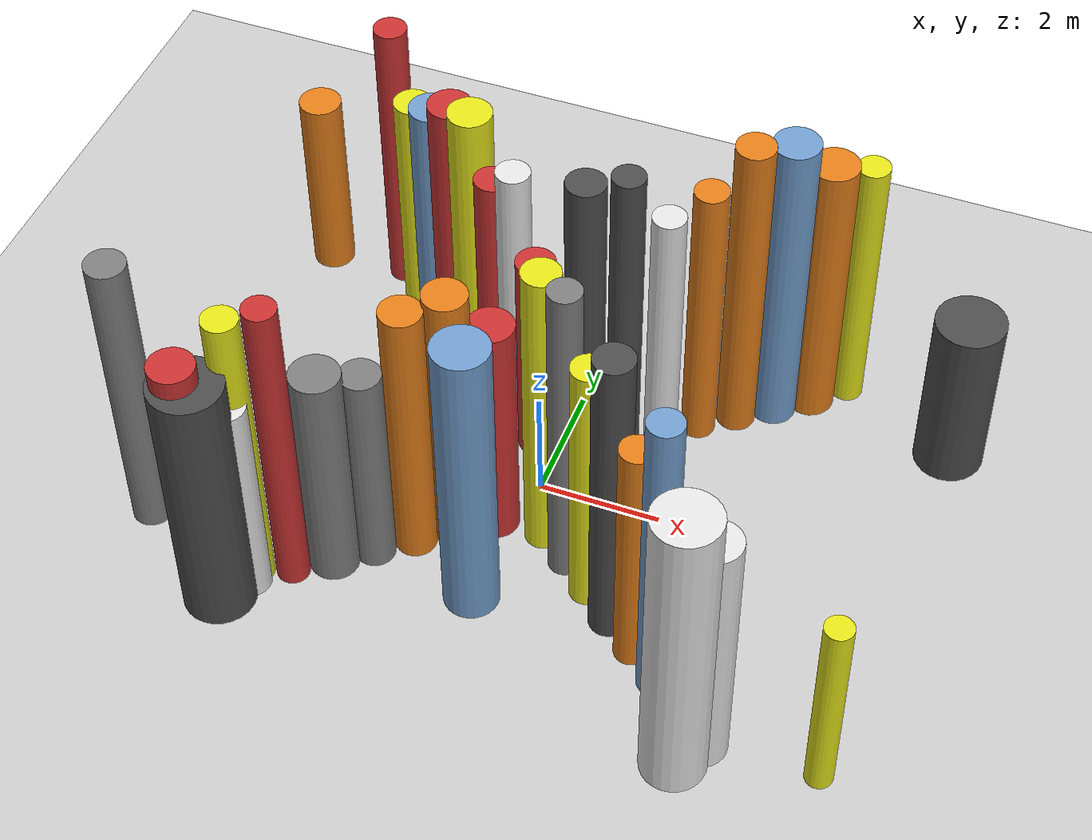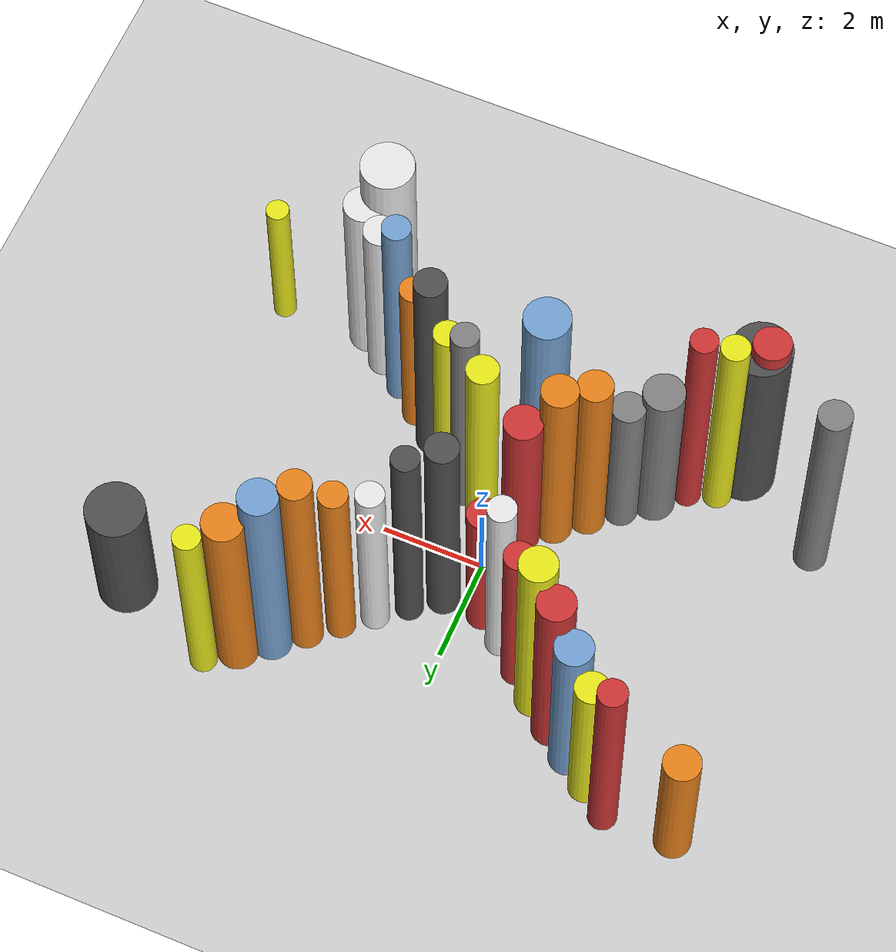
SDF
<?xml version='1.0'?>
<sdf version='1.6'>
  <world name='routeA_rl_v1__dense_recovery__rl_train__bottleneck_corridor__000073'>
    <!-- Sun light -->
    <light name='sun' type='directional'>
      <cast_shadows>1</cast_shadows>
      <pose>0 0 10 0 0 0</pose>
      <diffuse>0.8 0.8 0.8 1</diffuse>
      <specular>0.2 0.2 0.2 1</specular>
      <attenuation>
        <range>1000</range>
        <constant>0.9</constant>
        <linear>0.01</linear>
        <quadratic>0.001</quadratic>
      </attenuation>
      <direction>-0.5 0.1 -0.9</direction>
    </light>

    <!-- Ground plane -->
    <model name='ground_plane'>
      <static>1</static>
      <link name='link'>
        <collision name='collision'>
          <geometry>
            <plane>
              <normal>0 0 1</normal>
              <size>100 100</size>
            </plane>
          </geometry>
          <surface>
            <contact>
              <collide_bitmask>65535</collide_bitmask>
              <ode/>
            </contact>
            <friction>
              <ode>
                <mu>100</mu>
                <mu2>50</mu2>
              </ode>
              <torsional><ode/></torsional>
            </friction>
            <bounce/>
          </surface>
          <max_contacts>10</max_contacts>
        </collision>
        <visual name='visual'>
          <cast_shadows>0</cast_shadows>
          <geometry>
            <plane>
              <normal>0 0 1</normal>
              <size>100 100</size>
            </plane>
          </geometry>
          <material>
            <script>
              <uri>file://media/materials/scripts/gazebo.material</uri>
              <n>Gazebo/Grey</n>
            </script>
          </material>
        </visual>
      </link>
    </model>

    <!-- Environment -->
    <magnetic_field>6e-06 2.3e-05 -4.2e-05</magnetic_field>
    <atmosphere type='adiabatic'/>
    <physics name='default_physics' default='0' type='ode'>
      <gravity>0 0 -9.8</gravity>
      <max_step_size>0.004</max_step_size>
      <real_time_factor>1</real_time_factor>
      <real_time_update_rate>250</real_time_update_rate>
    </physics>
    <scene>
      <ambient>0.4 0.4 0.4 1</ambient>
      <background>0.7 0.7 0.7 1</background>
      <shadows>1</shadows>
    </scene>
    <wind/>
    <spherical_coordinates>
      <surface_model>EARTH_WGS84</surface_model>
      <latitude_deg>0</latitude_deg>
      <longitude_deg>0</longitude_deg>
      <elevation>0</elevation>
      <heading_deg>0</heading_deg>
    </spherical_coordinates>

    <!-- ============ OBSTACLES (40) ============ -->
    <model name='funnel_l_0'>
      <static>1</static>
      <link name='link'>
        <visual name='visual'>
          <geometry>
            <cylinder>
              <radius>0.3586</radius>
              <length>5.0715</length>
            </cylinder>
          </geometry>
          <material>
            <script>
              <n>Gazebo/Red</n>
              <uri>file://media/materials/scripts/gazebo.material</uri>
            </script>
            <ambient>0.8 0.2 0.2 1</ambient>
          </material>
        </visual>
        <collision name='collision'>
          <geometry>
            <cylinder>
              <radius>0.3586</radius>
              <length>5.0715</length>
            </cylinder>
          </geometry>
          <max_contacts>10</max_contacts>
          <surface>
            <contact><ode/></contact>
            <bounce/>
            <friction>
              <ode><mu>1</mu><mu2>1</mu2></ode>
              <torsional><ode/></torsional>
            </friction>
          </surface>
        </collision>
      </link>
      <pose>-4.0000 -3.8000 2.5357 0 0 0.0000</pose>
    </model>

    <model name='funnel_r_0'>
      <static>1</static>
      <link name='link'>
        <visual name='visual'>
          <geometry>
            <cylinder>
              <radius>0.2735</radius>
              <length>5.3521</length>
            </cylinder>
          </geometry>
          <material>
            <script>
              <n>Gazebo/Red</n>
              <uri>file://media/materials/scripts/gazebo.material</uri>
            </script>
            <ambient>0.8 0.2 0.2 1</ambient>
          </material>
        </visual>
        <collision name='collision'>
          <geometry>
            <cylinder>
              <radius>0.2735</radius>
              <length>5.3521</length>
            </cylinder>
          </geometry>
          <max_contacts>10</max_contacts>
          <surface>
            <contact><ode/></contact>
            <bounce/>
            <friction>
              <ode><mu>1</mu><mu2>1</mu2></ode>
              <torsional><ode/></torsional>
            </friction>
          </surface>
        </collision>
      </link>
      <pose>-4.0000 3.8000 2.6760 0 0 0.0000</pose>
    </model>

    <model name='funnel_l_1'>
      <static>1</static>
      <link name='link'>
        <visual name='visual'>
          <geometry>
            <cylinder>
              <radius>0.3065</radius>
              <length>4.0064</length>
            </cylinder>
          </geometry>
          <material>
            <script>
              <n>Gazebo/White</n>
              <uri>file://media/materials/scripts/gazebo.material</uri>
            </script>
            <ambient>0.9 0.9 0.9 1</ambient>
          </material>
        </visual>
        <collision name='collision'>
          <geometry>
            <cylinder>
              <radius>0.3065</radius>
              <length>4.0064</length>
            </cylinder>
          </geometry>
          <max_contacts>10</max_contacts>
          <surface>
            <contact><ode/></contact>
            <bounce/>
            <friction>
              <ode><mu>1</mu><mu2>1</mu2></ode>
              <torsional><ode/></torsional>
            </friction>
          </surface>
        </collision>
      </link>
      <pose>-3.4857 -3.3857 2.0032 0 0 0.0000</pose>
    </model>

    <model name='funnel_r_1'>
      <static>1</static>
      <link name='link'>
        <visual name='visual'>
          <geometry>
            <cylinder>
              <radius>0.3159</radius>
              <length>4.3102</length>
            </cylinder>
          </geometry>
          <material>
            <script>
              <n>Gazebo/Yellow</n>
              <uri>file://media/materials/scripts/gazebo.material</uri>
            </script>
            <ambient>0.9 0.9 0.1 1</ambient>
          </material>
        </visual>
        <collision name='collision'>
          <geometry>
            <cylinder>
              <radius>0.3159</radius>
              <length>4.3102</length>
            </cylinder>
          </geometry>
          <max_contacts>10</max_contacts>
          <surface>
            <contact><ode/></contact>
            <bounce/>
            <friction>
              <ode><mu>1</mu><mu2>1</mu2></ode>
              <torsional><ode/></torsional>
            </friction>
          </surface>
        </collision>
      </link>
      <pose>-3.4857 3.3857 2.1551 0 0 0.0000</pose>
    </model>

    <model name='funnel_l_2'>
      <static>1</static>
      <link name='link'>
        <visual name='visual'>
          <geometry>
            <cylinder>
              <radius>0.2623</radius>
              <length>5.7871</length>
            </cylinder>
          </geometry>
          <material>
            <script>
              <n>Gazebo/Red</n>
              <uri>file://media/materials/scripts/gazebo.material</uri>
            </script>
            <ambient>0.8 0.2 0.2 1</ambient>
          </material>
        </visual>
        <collision name='collision'>
          <geometry>
            <cylinder>
              <radius>0.2623</radius>
              <length>5.7871</length>
            </cylinder>
          </geometry>
          <max_contacts>10</max_contacts>
          <surface>
            <contact><ode/></contact>
            <bounce/>
            <friction>
              <ode><mu>1</mu><mu2>1</mu2></ode>
              <torsional><ode/></torsional>
            </friction>
          </surface>
        </collision>
      </link>
      <pose>-2.9714 -2.9714 2.8936 0 0 0.0000</pose>
    </model>

    <model name='funnel_r_2'>
      <static>1</static>
      <link name='link'>
        <visual name='visual'>
          <geometry>
            <cylinder>
              <radius>0.3608</radius>
              <length>4.6753</length>
            </cylinder>
          </geometry>
          <material>
            <script>
              <n>Gazebo/Blue</n>
              <uri>file://media/materials/scripts/gazebo.material</uri>
            </script>
            <ambient>0.447 0.624 0.812 1</ambient>
          </material>
        </visual>
        <collision name='collision'>
          <geometry>
            <cylinder>
              <radius>0.3608</radius>
              <length>4.6753</length>
            </cylinder>
          </geometry>
          <max_contacts>10</max_contacts>
          <surface>
            <contact><ode/></contact>
            <bounce/>
            <friction>
              <ode><mu>1</mu><mu2>1</mu2></ode>
              <torsional><ode/></torsional>
            </friction>
          </surface>
        </collision>
      </link>
      <pose>-2.9714 2.9714 2.3376 0 0 0.0000</pose>
    </model>

    <model name='funnel_l_3'>
      <static>1</static>
      <link name='link'>
        <visual name='visual'>
          <geometry>
            <cylinder>
              <radius>0.3946</radius>
              <length>4.2470</length>
            </cylinder>
          </geometry>
          <material>
            <script>
              <n>Gazebo/Grey</n>
              <uri>file://media/materials/scripts/gazebo.material</uri>
            </script>
            <ambient>0.5 0.5 0.5 1</ambient>
          </material>
        </visual>
        <collision name='collision'>
          <geometry>
            <cylinder>
              <radius>0.3946</radius>
              <length>4.2470</length>
            </cylinder>
          </geometry>
          <max_contacts>10</max_contacts>
          <surface>
            <contact><ode/></contact>
            <bounce/>
            <friction>
              <ode><mu>1</mu><mu2>1</mu2></ode>
              <torsional><ode/></torsional>
            </friction>
          </surface>
        </collision>
      </link>
      <pose>-2.4571 -2.5571 2.1235 0 0 0.0000</pose>
    </model>

    <model name='funnel_r_3'>
      <static>1</static>
      <link name='link'>
        <visual name='visual'>
          <geometry>
            <cylinder>
              <radius>0.3611</radius>
              <length>5.2264</length>
            </cylinder>
          </geometry>
          <material>
            <script>
              <n>Gazebo/Red</n>
              <uri>file://media/materials/scripts/gazebo.material</uri>
            </script>
            <ambient>0.8 0.2 0.2 1</ambient>
          </material>
        </visual>
        <collision name='collision'>
          <geometry>
            <cylinder>
              <radius>0.3611</radius>
              <length>5.2264</length>
            </cylinder>
          </geometry>
          <max_contacts>10</max_contacts>
          <surface>
            <contact><ode/></contact>
            <bounce/>
            <friction>
              <ode><mu>1</mu><mu2>1</mu2></ode>
              <torsional><ode/></torsional>
            </friction>
          </surface>
        </collision>
      </link>
      <pose>-2.4571 2.5571 2.6132 0 0 0.0000</pose>
    </model>

    <model name='funnel_l_4'>
      <static>1</static>
      <link name='link'>
        <visual name='visual'>
          <geometry>
            <cylinder>
              <radius>0.3242</radius>
              <length>4.0220</length>
            </cylinder>
          </geometry>
          <material>
            <script>
              <n>Gazebo/Grey</n>
              <uri>file://media/materials/scripts/gazebo.material</uri>
            </script>
            <ambient>0.5 0.5 0.5 1</ambient>
          </material>
        </visual>
        <collision name='collision'>
          <geometry>
            <cylinder>
              <radius>0.3242</radius>
              <length>4.0220</length>
            </cylinder>
          </geometry>
          <max_contacts>10</max_contacts>
          <surface>
            <contact><ode/></contact>
            <bounce/>
            <friction>
              <ode><mu>1</mu><mu2>1</mu2></ode>
              <torsional><ode/></torsional>
            </friction>
          </surface>
        </collision>
      </link>
      <pose>-1.9429 -2.1429 2.0110 0 0 0.0000</pose>
    </model>

    <model name='funnel_r_4'>
      <static>1</static>
      <link name='link'>
        <visual name='visual'>
          <geometry>
            <cylinder>
              <radius>0.3581</radius>
              <length>5.5497</length>
            </cylinder>
          </geometry>
          <material>
            <script>
              <n>Gazebo/Yellow</n>
              <uri>file://media/materials/scripts/gazebo.material</uri>
            </script>
            <ambient>0.9 0.9 0.1 1</ambient>
          </material>
        </visual>
        <collision name='collision'>
          <geometry>
            <cylinder>
              <radius>0.3581</radius>
              <length>5.5497</length>
            </cylinder>
          </geometry>
          <max_contacts>10</max_contacts>
          <surface>
            <contact><ode/></contact>
            <bounce/>
            <friction>
              <ode><mu>1</mu><mu2>1</mu2></ode>
              <torsional><ode/></torsional>
            </friction>
          </surface>
        </collision>
      </link>
      <pose>-1.9429 2.1429 2.7748 0 0 0.0000</pose>
    </model>

    <model name='funnel_l_5'>
      <static>1</static>
      <link name='link'>
        <visual name='visual'>
          <geometry>
            <cylinder>
              <radius>0.3347</radius>
              <length>5.1124</length>
            </cylinder>
          </geometry>
          <material>
            <script>
              <n>Gazebo/Orange</n>
              <uri>file://media/materials/scripts/gazebo.material</uri>
            </script>
            <ambient>0.9 0.5 0.1 1</ambient>
          </material>
        </visual>
        <collision name='collision'>
          <geometry>
            <cylinder>
              <radius>0.3347</radius>
              <length>5.1124</length>
            </cylinder>
          </geometry>
          <max_contacts>10</max_contacts>
          <surface>
            <contact><ode/></contact>
            <bounce/>
            <friction>
              <ode><mu>1</mu><mu2>1</mu2></ode>
              <torsional><ode/></torsional>
            </friction>
          </surface>
        </collision>
      </link>
      <pose>-1.4286 -1.7286 2.5562 0 0 0.0000</pose>
    </model>

    <model name='funnel_r_5'>
      <static>1</static>
      <link name='link'>
        <visual name='visual'>
          <geometry>
            <cylinder>
              <radius>0.2926</radius>
              <length>4.7142</length>
            </cylinder>
          </geometry>
          <material>
            <script>
              <n>Gazebo/Red</n>
              <uri>file://media/materials/scripts/gazebo.material</uri>
            </script>
            <ambient>0.8 0.2 0.2 1</ambient>
          </material>
        </visual>
        <collision name='collision'>
          <geometry>
            <cylinder>
              <radius>0.2926</radius>
              <length>4.7142</length>
            </cylinder>
          </geometry>
          <max_contacts>10</max_contacts>
          <surface>
            <contact><ode/></contact>
            <bounce/>
            <friction>
              <ode><mu>1</mu><mu2>1</mu2></ode>
              <torsional><ode/></torsional>
            </friction>
          </surface>
        </collision>
      </link>
      <pose>-1.4286 1.7286 2.3571 0 0 0.0000</pose>
    </model>

    <model name='funnel_l_6'>
      <static>1</static>
      <link name='link'>
        <visual name='visual'>
          <geometry>
            <cylinder>
              <radius>0.3491</radius>
              <length>5.2426</length>
            </cylinder>
          </geometry>
          <material>
            <script>
              <n>Gazebo/Orange</n>
              <uri>file://media/materials/scripts/gazebo.material</uri>
            </script>
            <ambient>0.9 0.5 0.1 1</ambient>
          </material>
        </visual>
        <collision name='collision'>
          <geometry>
            <cylinder>
              <radius>0.3491</radius>
              <length>5.2426</length>
            </cylinder>
          </geometry>
          <max_contacts>10</max_contacts>
          <surface>
            <contact><ode/></contact>
            <bounce/>
            <friction>
              <ode><mu>1</mu><mu2>1</mu2></ode>
              <torsional><ode/></torsional>
            </friction>
          </surface>
        </collision>
      </link>
      <pose>-0.9143 -1.3143 2.6213 0 0 0.0000</pose>
    </model>

    <model name='funnel_r_6'>
      <static>1</static>
      <link name='link'>
        <visual name='visual'>
          <geometry>
            <cylinder>
              <radius>0.2744</radius>
              <length>5.3681</length>
            </cylinder>
          </geometry>
          <material>
            <script>
              <n>Gazebo/White</n>
              <uri>file://media/materials/scripts/gazebo.material</uri>
            </script>
            <ambient>0.9 0.9 0.9 1</ambient>
          </material>
        </visual>
        <collision name='collision'>
          <geometry>
            <cylinder>
              <radius>0.2744</radius>
              <length>5.3681</length>
            </cylinder>
          </geometry>
          <max_contacts>10</max_contacts>
          <surface>
            <contact><ode/></contact>
            <bounce/>
            <friction>
              <ode><mu>1</mu><mu2>1</mu2></ode>
              <torsional><ode/></torsional>
            </friction>
          </surface>
        </collision>
      </link>
      <pose>-0.9143 1.3143 2.6840 0 0 0.0000</pose>
    </model>

    <model name='funnel_l_7'>
      <static>1</static>
      <link name='link'>
        <visual name='visual'>
          <geometry>
            <cylinder>
              <radius>0.3707</radius>
              <length>4.4175</length>
            </cylinder>
          </geometry>
          <material>
            <script>
              <n>Gazebo/Red</n>
              <uri>file://media/materials/scripts/gazebo.material</uri>
            </script>
            <ambient>0.8 0.2 0.2 1</ambient>
          </material>
        </visual>
        <collision name='collision'>
          <geometry>
            <cylinder>
              <radius>0.3707</radius>
              <length>4.4175</length>
            </cylinder>
          </geometry>
          <max_contacts>10</max_contacts>
          <surface>
            <contact><ode/></contact>
            <bounce/>
            <friction>
              <ode><mu>1</mu><mu2>1</mu2></ode>
              <torsional><ode/></torsional>
            </friction>
          </surface>
        </collision>
      </link>
      <pose>-0.4000 -0.9000 2.2087 0 0 0.0000</pose>
    </model>

    <model name='funnel_r_7'>
      <static>1</static>
      <link name='link'>
        <visual name='visual'>
          <geometry>
            <cylinder>
              <radius>0.3200</radius>
              <length>4.0639</length>
            </cylinder>
          </geometry>
          <material>
            <script>
              <n>Gazebo/Red</n>
              <uri>file://media/materials/scripts/gazebo.material</uri>
            </script>
            <ambient>0.8 0.2 0.2 1</ambient>
          </material>
        </visual>
        <collision name='collision'>
          <geometry>
            <cylinder>
              <radius>0.3200</radius>
              <length>4.0639</length>
            </cylinder>
          </geometry>
          <max_contacts>10</max_contacts>
          <surface>
            <contact><ode/></contact>
            <bounce/>
            <friction>
              <ode><mu>1</mu><mu2>1</mu2></ode>
              <torsional><ode/></torsional>
            </friction>
          </surface>
        </collision>
      </link>
      <pose>-0.4000 0.9000 2.0320 0 0 0.0000</pose>
    </model>

    <model name='funnel_out_l_0'>
      <static>1</static>
      <link name='link'>
        <visual name='visual'>
          <geometry>
            <cylinder>
              <radius>0.3049</radius>
              <length>5.7622</length>
            </cylinder>
          </geometry>
          <material>
            <script>
              <n>Gazebo/Yellow</n>
              <uri>file://media/materials/scripts/gazebo.material</uri>
            </script>
            <ambient>0.9 0.9 0.1 1</ambient>
          </material>
        </visual>
        <collision name='collision'>
          <geometry>
            <cylinder>
              <radius>0.3049</radius>
              <length>5.7622</length>
            </cylinder>
          </geometry>
          <max_contacts>10</max_contacts>
          <surface>
            <contact><ode/></contact>
            <bounce/>
            <friction>
              <ode><mu>1</mu><mu2>1</mu2></ode>
              <torsional><ode/></torsional>
            </friction>
          </surface>
        </collision>
      </link>
      <pose>0.4000 -0.9000 2.8811 0 0 0.0000</pose>
    </model>

    <model name='funnel_out_r_0'>
      <static>1</static>
      <link name='link'>
        <visual name='visual'>
          <geometry>
            <cylinder>
              <radius>0.3170</radius>
              <length>5.9236</length>
            </cylinder>
          </geometry>
          <material>
            <script>
              <n>Gazebo/DarkGrey</n>
              <uri>file://media/materials/scripts/gazebo.material</uri>
            </script>
            <ambient>0.3 0.3 0.3 1</ambient>
          </material>
        </visual>
        <collision name='collision'>
          <geometry>
            <cylinder>
              <radius>0.3170</radius>
              <length>5.9236</length>
            </cylinder>
          </geometry>
          <max_contacts>10</max_contacts>
          <surface>
            <contact><ode/></contact>
            <bounce/>
            <friction>
              <ode><mu>1</mu><mu2>1</mu2></ode>
              <torsional><ode/></torsional>
            </friction>
          </surface>
        </collision>
      </link>
      <pose>0.4000 0.9000 2.9618 0 0 0.0000</pose>
    </model>

    <model name='funnel_out_l_1'>
      <static>1</static>
      <link name='link'>
        <visual name='visual'>
          <geometry>
            <cylinder>
              <radius>0.2663</radius>
              <length>5.9661</length>
            </cylinder>
          </geometry>
          <material>
            <script>
              <n>Gazebo/Grey</n>
              <uri>file://media/materials/scripts/gazebo.material</uri>
            </script>
            <ambient>0.5 0.5 0.5 1</ambient>
          </material>
        </visual>
        <collision name='collision'>
          <geometry>
            <cylinder>
              <radius>0.2663</radius>
              <length>5.9661</length>
            </cylinder>
          </geometry>
          <max_contacts>10</max_contacts>
          <surface>
            <contact><ode/></contact>
            <bounce/>
            <friction>
              <ode><mu>1</mu><mu2>1</mu2></ode>
              <torsional><ode/></torsional>
            </friction>
          </surface>
        </collision>
      </link>
      <pose>0.9143 -1.3143 2.9830 0 0 0.0000</pose>
    </model>

    <model name='funnel_out_r_1'>
      <static>1</static>
      <link name='link'>
        <visual name='visual'>
          <geometry>
            <cylinder>
              <radius>0.2669</radius>
              <length>5.8618</length>
            </cylinder>
          </geometry>
          <material>
            <script>
              <n>Gazebo/DarkGrey</n>
              <uri>file://media/materials/scripts/gazebo.material</uri>
            </script>
            <ambient>0.3 0.3 0.3 1</ambient>
          </material>
        </visual>
        <collision name='collision'>
          <geometry>
            <cylinder>
              <radius>0.2669</radius>
              <length>5.8618</length>
            </cylinder>
          </geometry>
          <max_contacts>10</max_contacts>
          <surface>
            <contact><ode/></contact>
            <bounce/>
            <friction>
              <ode><mu>1</mu><mu2>1</mu2></ode>
              <torsional><ode/></torsional>
            </friction>
          </surface>
        </collision>
      </link>
      <pose>0.9143 1.3143 2.9309 0 0 0.0000</pose>
    </model>

    <model name='funnel_out_l_2'>
      <static>1</static>
      <link name='link'>
        <visual name='visual'>
          <geometry>
            <cylinder>
              <radius>0.2747</radius>
              <length>5.0227</length>
            </cylinder>
          </geometry>
          <material>
            <script>
              <n>Gazebo/Yellow</n>
              <uri>file://media/materials/scripts/gazebo.material</uri>
            </script>
            <ambient>0.9 0.9 0.1 1</ambient>
          </material>
        </visual>
        <collision name='collision'>
          <geometry>
            <cylinder>
              <radius>0.2747</radius>
              <length>5.0227</length>
            </cylinder>
          </geometry>
          <max_contacts>10</max_contacts>
          <surface>
            <contact><ode/></contact>
            <bounce/>
            <friction>
              <ode><mu>1</mu><mu2>1</mu2></ode>
              <torsional><ode/></torsional>
            </friction>
          </surface>
        </collision>
      </link>
      <pose>1.4286 -1.7286 2.5114 0 0 0.0000</pose>
    </model>

    <model name='funnel_out_r_2'>
      <static>1</static>
      <link name='link'>
        <visual name='visual'>
          <geometry>
            <cylinder>
              <radius>0.2716</radius>
              <length>4.8697</length>
            </cylinder>
          </geometry>
          <material>
            <script>
              <n>Gazebo/White</n>
              <uri>file://media/materials/scripts/gazebo.material</uri>
            </script>
            <ambient>0.9 0.9 0.9 1</ambient>
          </material>
        </visual>
        <collision name='collision'>
          <geometry>
            <cylinder>
              <radius>0.2716</radius>
              <length>4.8697</length>
            </cylinder>
          </geometry>
          <max_contacts>10</max_contacts>
          <surface>
            <contact><ode/></contact>
            <bounce/>
            <friction>
              <ode><mu>1</mu><mu2>1</mu2></ode>
              <torsional><ode/></torsional>
            </friction>
          </surface>
        </collision>
      </link>
      <pose>1.4286 1.7286 2.4348 0 0 0.0000</pose>
    </model>

    <model name='funnel_out_l_3'>
      <static>1</static>
      <link name='link'>
        <visual name='visual'>
          <geometry>
            <cylinder>
              <radius>0.3142</radius>
              <length>5.8073</length>
            </cylinder>
          </geometry>
          <material>
            <script>
              <n>Gazebo/DarkGrey</n>
              <uri>file://media/materials/scripts/gazebo.material</uri>
            </script>
            <ambient>0.3 0.3 0.3 1</ambient>
          </material>
        </visual>
        <collision name='collision'>
          <geometry>
            <cylinder>
              <radius>0.3142</radius>
              <length>5.8073</length>
            </cylinder>
          </geometry>
          <max_contacts>10</max_contacts>
          <surface>
            <contact><ode/></contact>
            <bounce/>
            <friction>
              <ode><mu>1</mu><mu2>1</mu2></ode>
              <torsional><ode/></torsional>
            </friction>
          </surface>
        </collision>
      </link>
      <pose>1.9429 -2.1429 2.9036 0 0 0.0000</pose>
    </model>

    <model name='funnel_out_r_3'>
      <static>1</static>
      <link name='link'>
        <visual name='visual'>
          <geometry>
            <cylinder>
              <radius>0.2775</radius>
              <length>5.2025</length>
            </cylinder>
          </geometry>
          <material>
            <script>
              <n>Gazebo/Orange</n>
              <uri>file://media/materials/scripts/gazebo.material</uri>
            </script>
            <ambient>0.9 0.5 0.1 1</ambient>
          </material>
        </visual>
        <collision name='collision'>
          <geometry>
            <cylinder>
              <radius>0.2775</radius>
              <length>5.2025</length>
            </cylinder>
          </geometry>
          <max_contacts>10</max_contacts>
          <surface>
            <contact><ode/></contact>
            <bounce/>
            <friction>
              <ode><mu>1</mu><mu2>1</mu2></ode>
              <torsional><ode/></torsional>
            </friction>
          </surface>
        </collision>
      </link>
      <pose>1.9429 2.1429 2.6012 0 0 0.0000</pose>
    </model>

    <model name='funnel_out_l_4'>
      <static>1</static>
      <link name='link'>
        <visual name='visual'>
          <geometry>
            <cylinder>
              <radius>0.2747</radius>
              <length>4.6065</length>
            </cylinder>
          </geometry>
          <material>
            <script>
              <n>Gazebo/Orange</n>
              <uri>file://media/materials/scripts/gazebo.material</uri>
            </script>
            <ambient>0.9 0.5 0.1 1</ambient>
          </material>
        </visual>
        <collision name='collision'>
          <geometry>
            <cylinder>
              <radius>0.2747</radius>
              <length>4.6065</length>
            </cylinder>
          </geometry>
          <max_contacts>10</max_contacts>
          <surface>
            <contact><ode/></contact>
            <bounce/>
            <friction>
              <ode><mu>1</mu><mu2>1</mu2></ode>
              <torsional><ode/></torsional>
            </friction>
          </surface>
        </collision>
      </link>
      <pose>2.4571 -2.5571 2.3033 0 0 0.0000</pose>
    </model>

    <model name='funnel_out_r_4'>
      <static>1</static>
      <link name='link'>
        <visual name='visual'>
          <geometry>
            <cylinder>
              <radius>0.3149</radius>
              <length>5.9021</length>
            </cylinder>
          </geometry>
          <material>
            <script>
              <n>Gazebo/Orange</n>
              <uri>file://media/materials/scripts/gazebo.material</uri>
            </script>
            <ambient>0.9 0.5 0.1 1</ambient>
          </material>
        </visual>
        <collision name='collision'>
          <geometry>
            <cylinder>
              <radius>0.3149</radius>
              <length>5.9021</length>
            </cylinder>
          </geometry>
          <max_contacts>10</max_contacts>
          <surface>
            <contact><ode/></contact>
            <bounce/>
            <friction>
              <ode><mu>1</mu><mu2>1</mu2></ode>
              <torsional><ode/></torsional>
            </friction>
          </surface>
        </collision>
      </link>
      <pose>2.4571 2.5571 2.9510 0 0 0.0000</pose>
    </model>

    <model name='funnel_out_l_5'>
      <static>1</static>
      <link name='link'>
        <visual name='visual'>
          <geometry>
            <cylinder>
              <radius>0.2761</radius>
              <length>5.7819</length>
            </cylinder>
          </geometry>
          <material>
            <script>
              <n>Gazebo/Blue</n>
              <uri>file://media/materials/scripts/gazebo.material</uri>
            </script>
            <ambient>0.447 0.624 0.812 1</ambient>
          </material>
        </visual>
        <collision name='collision'>
          <geometry>
            <cylinder>
              <radius>0.2761</radius>
              <length>5.7819</length>
            </cylinder>
          </geometry>
          <max_contacts>10</max_contacts>
          <surface>
            <contact><ode/></contact>
            <bounce/>
            <friction>
              <ode><mu>1</mu><mu2>1</mu2></ode>
              <torsional><ode/></torsional>
            </friction>
          </surface>
        </collision>
      </link>
      <pose>2.9714 -2.9714 2.8909 0 0 0.0000</pose>
    </model>

    <model name='funnel_out_r_5'>
      <static>1</static>
      <link name='link'>
        <visual name='visual'>
          <geometry>
            <cylinder>
              <radius>0.3741</radius>
              <length>5.7834</length>
            </cylinder>
          </geometry>
          <material>
            <script>
              <n>Gazebo/Blue</n>
              <uri>file://media/materials/scripts/gazebo.material</uri>
            </script>
            <ambient>0.447 0.624 0.812 1</ambient>
          </material>
        </visual>
        <collision name='collision'>
          <geometry>
            <cylinder>
              <radius>0.3741</radius>
              <length>5.7834</length>
            </cylinder>
          </geometry>
          <max_contacts>10</max_contacts>
          <surface>
            <contact><ode/></contact>
            <bounce/>
            <friction>
              <ode><mu>1</mu><mu2>1</mu2></ode>
              <torsional><ode/></torsional>
            </friction>
          </surface>
        </collision>
      </link>
      <pose>2.9714 2.9714 2.8917 0 0 0.0000</pose>
    </model>

    <model name='funnel_out_l_6'>
      <static>1</static>
      <link name='link'>
        <visual name='visual'>
          <geometry>
            <cylinder>
              <radius>0.3301</radius>
              <length>4.7495</length>
            </cylinder>
          </geometry>
          <material>
            <script>
              <n>Gazebo/White</n>
              <uri>file://media/materials/scripts/gazebo.material</uri>
            </script>
            <ambient>0.9 0.9 0.9 1</ambient>
          </material>
        </visual>
        <collision name='collision'>
          <geometry>
            <cylinder>
              <radius>0.3301</radius>
              <length>4.7495</length>
            </cylinder>
          </geometry>
          <max_contacts>10</max_contacts>
          <surface>
            <contact><ode/></contact>
            <bounce/>
            <friction>
              <ode><mu>1</mu><mu2>1</mu2></ode>
              <torsional><ode/></torsional>
            </friction>
          </surface>
        </collision>
      </link>
      <pose>3.4857 -3.3857 2.3748 0 0 0.0000</pose>
    </model>

    <model name='funnel_out_r_6'>
      <static>1</static>
      <link name='link'>
        <visual name='visual'>
          <geometry>
            <cylinder>
              <radius>0.3900</radius>
              <length>5.1813</length>
            </cylinder>
          </geometry>
          <material>
            <script>
              <n>Gazebo/Orange</n>
              <uri>file://media/materials/scripts/gazebo.material</uri>
            </script>
            <ambient>0.9 0.5 0.1 1</ambient>
          </material>
        </visual>
        <collision name='collision'>
          <geometry>
            <cylinder>
              <radius>0.3900</radius>
              <length>5.1813</length>
            </cylinder>
          </geometry>
          <max_contacts>10</max_contacts>
          <surface>
            <contact><ode/></contact>
            <bounce/>
            <friction>
              <ode><mu>1</mu><mu2>1</mu2></ode>
              <torsional><ode/></torsional>
            </friction>
          </surface>
        </collision>
      </link>
      <pose>3.4857 3.3857 2.5906 0 0 0.0000</pose>
    </model>

    <model name='funnel_out_l_7'>
      <static>1</static>
      <link name='link'>
        <visual name='visual'>
          <geometry>
            <cylinder>
              <radius>0.3889</radius>
              <length>4.7196</length>
            </cylinder>
          </geometry>
          <material>
            <script>
              <n>Gazebo/White</n>
              <uri>file://media/materials/scripts/gazebo.material</uri>
            </script>
            <ambient>0.9 0.9 0.9 1</ambient>
          </material>
        </visual>
        <collision name='collision'>
          <geometry>
            <cylinder>
              <radius>0.3889</radius>
              <length>4.7196</length>
            </cylinder>
          </geometry>
          <max_contacts>10</max_contacts>
          <surface>
            <contact><ode/></contact>
            <bounce/>
            <friction>
              <ode><mu>1</mu><mu2>1</mu2></ode>
              <torsional><ode/></torsional>
            </friction>
          </surface>
        </collision>
      </link>
      <pose>4.0000 -3.8000 2.3598 0 0 0.0000</pose>
    </model>

    <model name='funnel_out_r_7'>
      <static>1</static>
      <link name='link'>
        <visual name='visual'>
          <geometry>
            <cylinder>
              <radius>0.2605</radius>
              <length>4.9551</length>
            </cylinder>
          </geometry>
          <material>
            <script>
              <n>Gazebo/Yellow</n>
              <uri>file://media/materials/scripts/gazebo.material</uri>
            </script>
            <ambient>0.9 0.9 0.1 1</ambient>
          </material>
        </visual>
        <collision name='collision'>
          <geometry>
            <cylinder>
              <radius>0.2605</radius>
              <length>4.9551</length>
            </cylinder>
          </geometry>
          <max_contacts>10</max_contacts>
          <surface>
            <contact><ode/></contact>
            <bounce/>
            <friction>
              <ode><mu>1</mu><mu2>1</mu2></ode>
              <torsional><ode/></torsional>
            </friction>
          </surface>
        </collision>
      </link>
      <pose>4.0000 3.8000 2.4775 0 0 0.0000</pose>
    </model>

    <model name='bn_scatter_0'>
      <static>1</static>
      <link name='link'>
        <visual name='visual'>
          <geometry>
            <cylinder>
              <radius>0.5752</radius>
              <length>4.7498</length>
            </cylinder>
          </geometry>
          <material>
            <script>
              <n>Gazebo/DarkGrey</n>
              <uri>file://media/materials/scripts/gazebo.material</uri>
            </script>
            <ambient>0.3 0.3 0.3 1</ambient>
          </material>
        </visual>
        <collision name='collision'>
          <geometry>
            <cylinder>
              <radius>0.5752</radius>
              <length>4.7498</length>
            </cylinder>
          </geometry>
          <max_contacts>10</max_contacts>
          <surface>
            <contact><ode/></contact>
            <bounce/>
            <friction>
              <ode><mu>1</mu><mu2>1</mu2></ode>
              <torsional><ode/></torsional>
            </friction>
          </surface>
        </collision>
      </link>
      <pose>-3.8248 -3.8031 2.3749 0 0 0.0000</pose>
    </model>

    <model name='bn_scatter_1'>
      <static>1</static>
      <link name='link'>
        <visual name='visual'>
          <geometry>
            <cylinder>
              <radius>0.5122</radius>
              <length>5.5714</length>
            </cylinder>
          </geometry>
          <material>
            <script>
              <n>Gazebo/White</n>
              <uri>file://media/materials/scripts/gazebo.material</uri>
            </script>
            <ambient>0.9 0.9 0.9 1</ambient>
          </material>
        </visual>
        <collision name='collision'>
          <geometry>
            <cylinder>
              <radius>0.5122</radius>
              <length>5.5714</length>
            </cylinder>
          </geometry>
          <max_contacts>10</max_contacts>
          <surface>
            <contact><ode/></contact>
            <bounce/>
            <friction>
              <ode><mu>1</mu><mu2>1</mu2></ode>
              <torsional><ode/></torsional>
            </friction>
          </surface>
        </collision>
      </link>
      <pose>3.7048 -4.2390 2.7857 0 0 0.0000</pose>
    </model>

    <model name='bn_scatter_2'>
      <static>1</static>
      <link name='link'>
        <visual name='visual'>
          <geometry>
            <cylinder>
              <radius>0.2778</radius>
              <length>5.5780</length>
            </cylinder>
          </geometry>
          <material>
            <script>
              <n>Gazebo/Yellow</n>
              <uri>file://media/materials/scripts/gazebo.material</uri>
            </script>
            <ambient>0.9 0.9 0.1 1</ambient>
          </material>
        </visual>
        <collision name='collision'>
          <geometry>
            <cylinder>
              <radius>0.2778</radius>
              <length>5.5780</length>
            </cylinder>
          </geometry>
          <max_contacts>10</max_contacts>
          <surface>
            <contact><ode/></contact>
            <bounce/>
            <friction>
              <ode><mu>1</mu><mu2>1</mu2></ode>
              <torsional><ode/></torsional>
            </friction>
          </surface>
        </collision>
      </link>
      <pose>-3.5020 -3.1729 2.7890 0 0 0.0000</pose>
    </model>

    <model name='bn_scatter_3'>
      <static>1</static>
      <link name='link'>
        <visual name='visual'>
          <geometry>
            <cylinder>
              <radius>0.2201</radius>
              <length>3.5528</length>
            </cylinder>
          </geometry>
          <material>
            <script>
              <n>Gazebo/Yellow</n>
              <uri>file://media/materials/scripts/gazebo.material</uri>
            </script>
            <ambient>0.9 0.9 0.1 1</ambient>
          </material>
        </visual>
        <collision name='collision'>
          <geometry>
            <cylinder>
              <radius>0.2201</radius>
              <length>3.5528</length>
            </cylinder>
          </geometry>
          <max_contacts>10</max_contacts>
          <surface>
            <contact><ode/></contact>
            <bounce/>
            <friction>
              <ode><mu>1</mu><mu2>1</mu2></ode>
              <torsional><ode/></torsional>
            </friction>
          </surface>
        </collision>
      </link>
      <pose>5.7593 -3.7110 1.7764 0 0 0.0000</pose>
    </model>

    <model name='bn_scatter_4'>
      <static>1</static>
      <link name='link'>
        <visual name='visual'>
          <geometry>
            <cylinder>
              <radius>0.3504</radius>
              <length>3.4901</length>
            </cylinder>
          </geometry>
          <material>
            <script>
              <n>Gazebo/Orange</n>
              <uri>file://media/materials/scripts/gazebo.material</uri>
            </script>
            <ambient>0.9 0.5 0.1 1</ambient>
          </material>
        </visual>
        <collision name='collision'>
          <geometry>
            <cylinder>
              <radius>0.3504</radius>
              <length>3.4901</length>
            </cylinder>
          </geometry>
          <max_contacts>10</max_contacts>
          <surface>
            <contact><ode/></contact>
            <bounce/>
            <friction>
              <ode><mu>1</mu><mu2>1</mu2></ode>
              <torsional><ode/></torsional>
            </friction>
          </surface>
        </collision>
      </link>
      <pose>-5.3455 3.7360 1.7451 0 0 0.0000</pose>
    </model>

    <model name='bn_scatter_5'>
      <static>1</static>
      <link name='link'>
        <visual name='visual'>
          <geometry>
            <cylinder>
              <radius>0.5664</radius>
              <length>3.0879</length>
            </cylinder>
          </geometry>
          <material>
            <script>
              <n>Gazebo/DarkGrey</n>
              <uri>file://media/materials/scripts/gazebo.material</uri>
            </script>
            <ambient>0.3 0.3 0.3 1</ambient>
          </material>
        </visual>
        <collision name='collision'>
          <geometry>
            <cylinder>
              <radius>0.5664</radius>
              <length>3.0879</length>
            </cylinder>
          </geometry>
          <max_contacts>10</max_contacts>
          <surface>
            <contact><ode/></contact>
            <bounce/>
            <friction>
              <ode><mu>1</mu><mu2>1</mu2></ode>
              <torsional><ode/></torsional>
            </friction>
          </surface>
        </collision>
      </link>
      <pose>5.9492 2.9810 1.5439 0 0 0.0000</pose>
    </model>

    <model name='bn_scatter_6'>
      <static>1</static>
      <link name='link'>
        <visual name='visual'>
          <geometry>
            <cylinder>
              <radius>0.4455</radius>
              <length>5.5240</length>
            </cylinder>
          </geometry>
          <material>
            <script>
              <n>Gazebo/Blue</n>
              <uri>file://media/materials/scripts/gazebo.material</uri>
            </script>
            <ambient>0.447 0.624 0.812 1</ambient>
          </material>
        </visual>
        <collision name='collision'>
          <geometry>
            <cylinder>
              <radius>0.4455</radius>
              <length>5.5240</length>
            </cylinder>
          </geometry>
          <max_contacts>10</max_contacts>
          <surface>
            <contact><ode/></contact>
            <bounce/>
            <friction>
              <ode><mu>1</mu><mu2>1</mu2></ode>
              <torsional><ode/></torsional>
            </friction>
          </surface>
        </collision>
      </link>
      <pose>-0.1948 -2.4433 2.7620 0 0 0.0000</pose>
    </model>

    <model name='bn_scatter_7'>
      <static>1</static>
      <link name='link'>
        <visual name='visual'>
          <geometry>
            <cylinder>
              <radius>0.3199</radius>
              <length>5.4564</length>
            </cylinder>
          </geometry>
          <material>
            <script>
              <n>Gazebo/Grey</n>
              <uri>file://media/materials/scripts/gazebo.material</uri>
            </script>
            <ambient>0.5 0.5 0.5 1</ambient>
          </material>
        </visual>
        <collision name='collision'>
          <geometry>
            <cylinder>
              <radius>0.3199</radius>
              <length>5.4564</length>
            </cylinder>
          </geometry>
          <max_contacts>10</max_contacts>
          <surface>
            <contact><ode/></contact>
            <bounce/>
            <friction>
              <ode><mu>1</mu><mu2>1</mu2></ode>
              <torsional><ode/></torsional>
            </friction>
          </surface>
        </collision>
      </link>
      <pose>-5.5883 -2.6583 2.7282 0 0 0.0000</pose>
    </model>

    <!-- GUI camera -->
    <gui fullscreen='0'>
      <camera name='user_camera'>
        <pose>-15 0 18 0 0.85 0.15</pose>
        <view_controller>orbit</view_controller>
        <projection_type>perspective</projection_type>
      </camera>
    </gui>
  </world>
</sdf>
